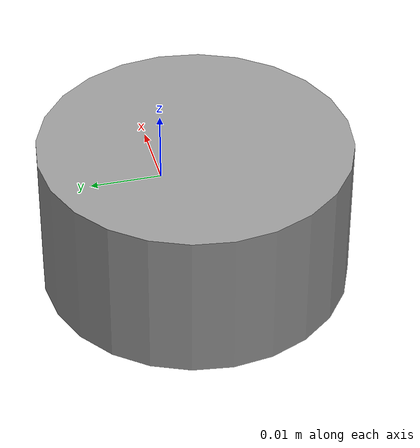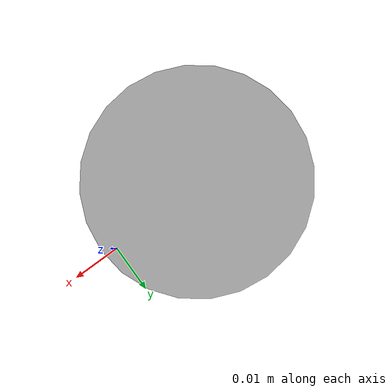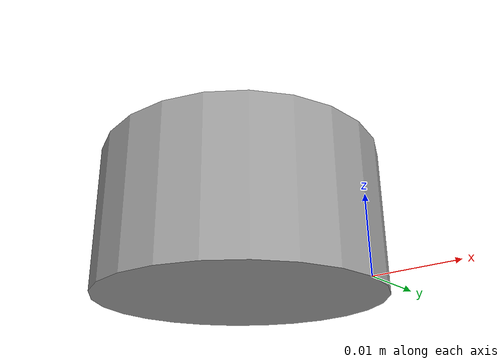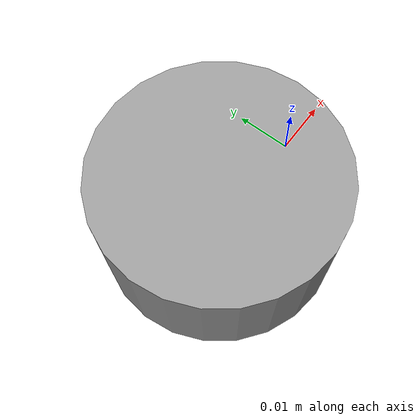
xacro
<?xml version="1.0"?>
<robot xmlns:xacro="http://www.ros.org/wiki/xacro">

    <xacro:property name="lidar_radius" value="0.02"/>
    <xacro:property name="lidar_length" value="0.02"/>

    <link name="laser_link">
        <visual>
            <geometry>
                <cylinder radius="${lidar_radius}" length="${lidar_length}"/>
            </geometry>
            <material name="grey"/>
            <origin xyz="${-lidar_radius} 0 ${lidar_length / 2}" rpy="0 0 0" />
        </visual>

        <xacro:cylinder_inertia m="0.1" r="${lidar_radius}" l="${lidar_length}"
                    o_xyz="${-lidar_radius} 0 ${lidar_length / 2}" o_rpy="0 0 0"/>
    </link>

    <gazebo reference="laser_link">
        <sensor name="lidar" type="gpu_lidar">
            <visualize>true</visualize>

            <topic>/scan</topic>

            <pose>0 0 0 0 0 0</pose>

            <update_rate>10</update_rate>

                <ray>
                    <scan>
                        <horizontal>
                            <samples>180</samples>
                            <resolution>1</resolution>
                            <min_angle>-1.5708</min_angle>
                            <max_angle>1.5708</max_angle>
                        </horizontal>
                    </scan>

                    <range>
                        <min>0.01</min>
                        <max>10.0</max>
                        <resolution>0.01</resolution>
                    </range>
                </ray>

            <always_on>true</always_on>

        </sensor>
    </gazebo>

    <!-- Prevent this fixed link from automatically merging -->
    <gazebo reference="laser_joint">
        <preserveFixedJoint>true</preserveFixedJoint>
    </gazebo>
</robot>
